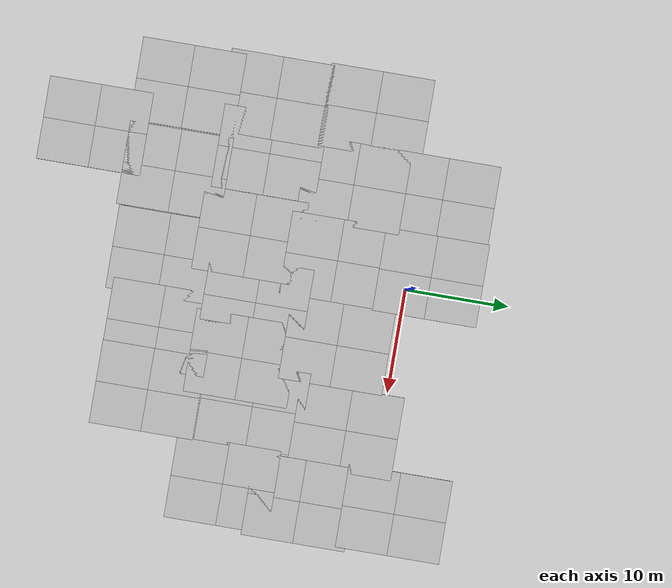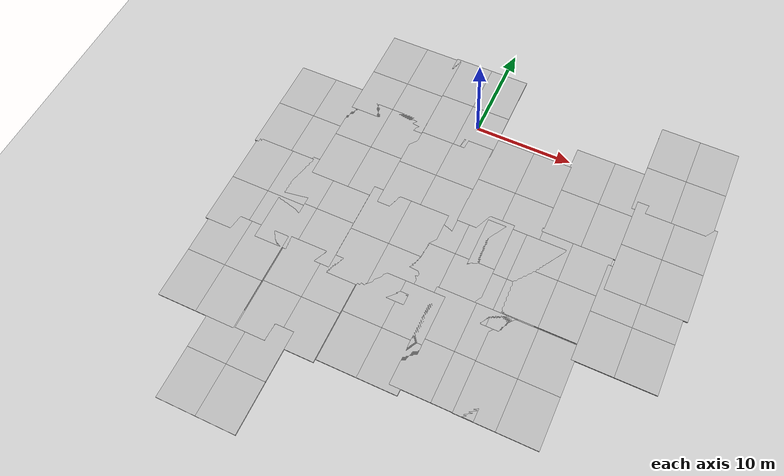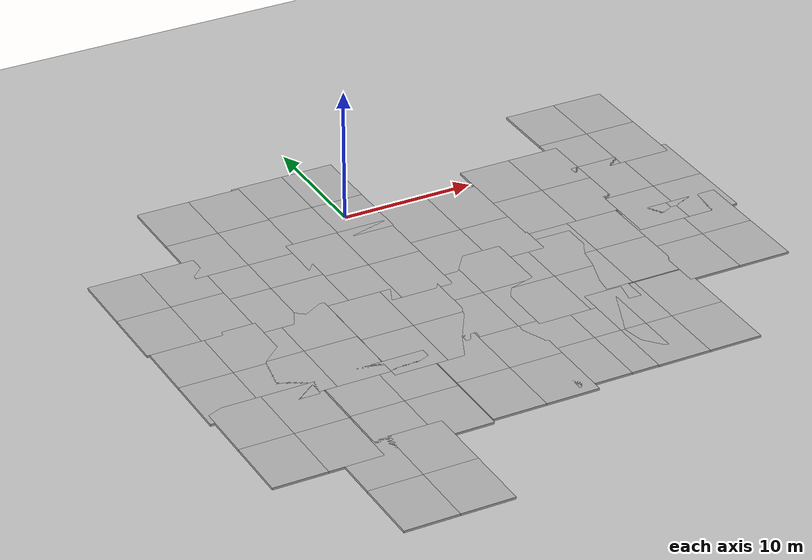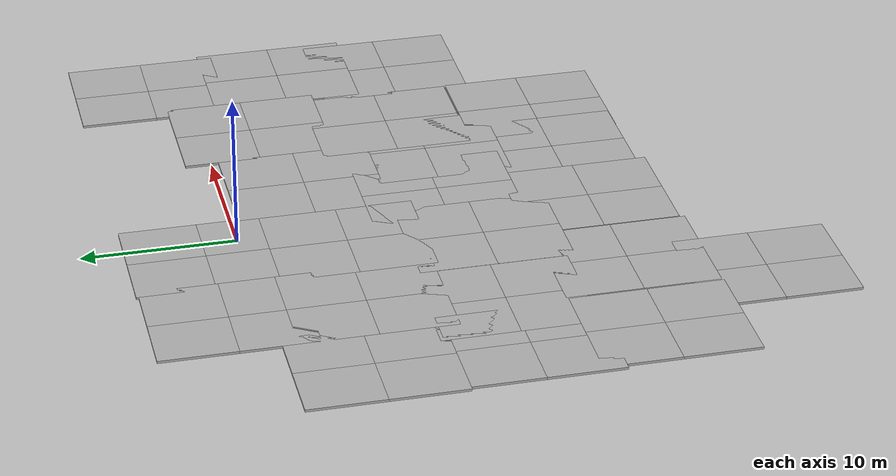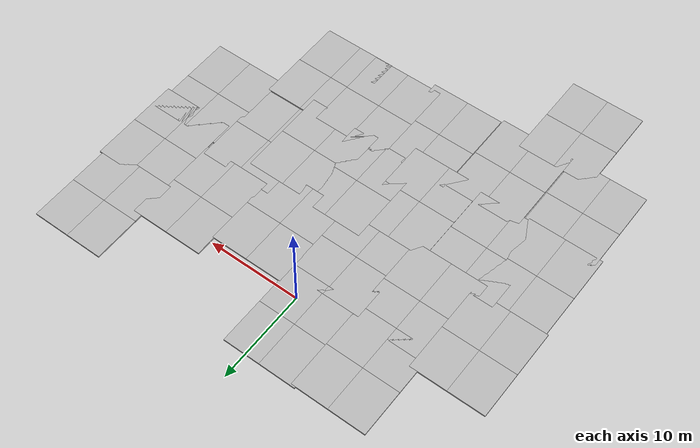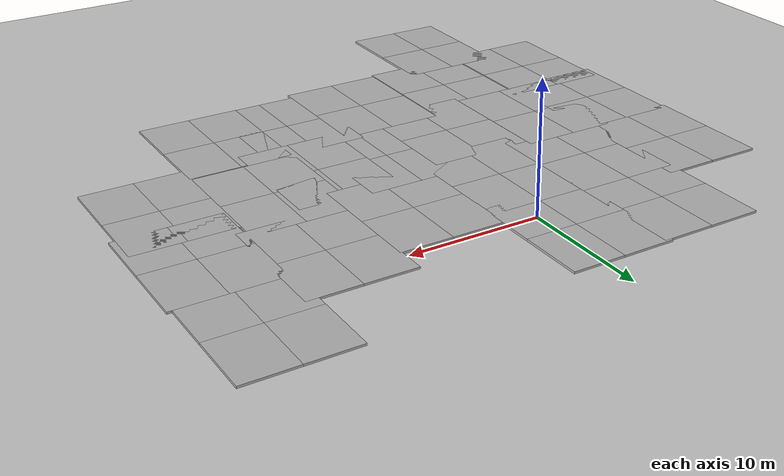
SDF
<sdf version="1.6">
 <world name="default">
  <model name="ground_plane">
   <static>1</static>
   <link name="link">
    <collision name="collision">
     <geometry><plane><normal>0 0 1</normal><size>100 100</size></plane></geometry>
     <surface><friction><ode><mu>100</mu><mu2>50</mu2></ode></friction></surface>
    </collision>
    <visual name="visual">
     <cast_shadows>0</cast_shadows>
     <geometry><plane><normal>0 0 1</normal><size>100 100</size></plane></geometry>
     <material>
      <script><uri>file://media/materials/scripts/gazebo.material</uri><name>Gazebo/Grey</name></script>
     </material>
    </visual>
   </link>
  </model>
  <model name="mud_box">
   <static>1</static>
   <link name="link">
    <collision name="collision"><geometry><box><size>8 10 0.2</size></box></geometry></collision>
    <visual name="visual_1">
     <pose>-2 2.5 0 0 -0 0</pose>
     <cast_shadows>0</cast_shadows>
     <geometry><box><size>4 5 0.2</size></box></geometry>
     <material>
      <script>
       <uri>model://mud_box/materials/scripts</uri>
       <uri>model://mud_box/materials/textures</uri>
       <name>vrc/mud</name>
      </script>
     </material>
    </visual>
    <visual name="visual_2">
     <pose>2 2.5 0 0 -0 0</pose>
     <cast_shadows>0</cast_shadows>
     <geometry><box><size>4 5 0.2</size></box></geometry>
     <material>
      <script>
       <uri>model://mud_box/materials/scripts</uri>
       <uri>model://mud_box/materials/textures</uri>
       <name>vrc/mud</name>
      </script>
     </material>
    </visual>
    <visual name="visual_3">
     <pose>2 -2.5 0 0 -0 0</pose>
     <cast_shadows>0</cast_shadows>
     <geometry><box><size>4 5 0.2</size></box></geometry>
     <material>
      <script>
       <uri>model://mud_box/materials/scripts</uri>
       <uri>model://mud_box/materials/textures</uri>
       <name>vrc/mud</name>
      </script>
     </material>
    </visual>
    <visual name="visual_4">
     <pose>-2 -2.5 0 0 -0 0</pose>
     <cast_shadows>0</cast_shadows>
     <geometry><box><size>4 5 0.2</size></box></geometry>
     <material>
      <script>
       <uri>model://mud_box/materials/scripts</uri>
       <uri>model://mud_box/materials/textures</uri>
       <name>vrc/mud</name>
      </script>
     </material>
    </visual>
   </link>
   <pose>-9.02524 2.09965 0 0 -0 0</pose>
  </model>
  <model name="mud_box_clone">
   <static>1</static>
   <link name="link">
    <collision name="collision"><geometry><box><size>8 10 0.2</size></box></geometry></collision>
    <visual name="visual_1">
     <pose>-2 2.5 0 0 -0 0</pose>
     <cast_shadows>0</cast_shadows>
     <geometry><box><size>4 5 0.2</size></box></geometry>
     <material>
      <script>
       <uri>model://mud_box/materials/scripts</uri>
       <uri>model://mud_box/materials/textures</uri>
       <name>vrc/mud</name>
      </script>
     </material>
    </visual>
    <visual name="visual_2">
     <pose>2 2.5 0 0 -0 0</pose>
     <cast_shadows>0</cast_shadows>
     <geometry><box><size>4 5 0.2</size></box></geometry>
     <material>
      <script>
       <uri>model://mud_box/materials/scripts</uri>
       <uri>model://mud_box/materials/textures</uri>
       <name>vrc/mud</name>
      </script>
     </material>
    </visual>
    <visual name="visual_3">
     <pose>2 -2.5 0 0 -0 0</pose>
     <cast_shadows>0</cast_shadows>
     <geometry><box><size>4 5 0.2</size></box></geometry>
     <material>
      <script>
       <uri>model://mud_box/materials/scripts</uri>
       <uri>model://mud_box/materials/textures</uri>
       <name>vrc/mud</name>
      </script>
     </material>
    </visual>
    <visual name="visual_4">
     <pose>-2 -2.5 0 0 -0 0</pose>
     <cast_shadows>0</cast_shadows>
     <geometry><box><size>4 5 0.2</size></box></geometry>
     <material>
      <script>
       <uri>model://mud_box/materials/scripts</uri>
       <uri>model://mud_box/materials/textures</uri>
       <name>vrc/mud</name>
      </script>
     </material>
    </visual>
   </link>
   <pose>-9.01138 -6.47442 0 0 -0 0</pose>
  </model>
  <model name="mud_box_clone_0">
   <static>1</static>
   <link name="link">
    <collision name="collision"><geometry><box><size>8 10 0.2</size></box></geometry></collision>
    <visual name="visual_1">
     <pose>-2 2.5 0 0 -0 0</pose>
     <cast_shadows>0</cast_shadows>
     <geometry><box><size>4 5 0.2</size></box></geometry>
     <material>
      <script>
       <uri>model://mud_box/materials/scripts</uri>
       <uri>model://mud_box/materials/textures</uri>
       <name>vrc/mud</name>
      </script>
     </material>
    </visual>
    <visual name="visual_2">
     <pose>2 2.5 0 0 -0 0</pose>
     <cast_shadows>0</cast_shadows>
     <geometry><box><size>4 5 0.2</size></box></geometry>
     <material>
      <script>
       <uri>model://mud_box/materials/scripts</uri>
       <uri>model://mud_box/materials/textures</uri>
       <name>vrc/mud</name>
      </script>
     </material>
    </visual>
    <visual name="visual_3">
     <pose>2 -2.5 0 0 -0 0</pose>
     <cast_shadows>0</cast_shadows>
     <geometry><box><size>4 5 0.2</size></box></geometry>
     <material>
      <script>
       <uri>model://mud_box/materials/scripts</uri>
       <uri>model://mud_box/materials/textures</uri>
       <name>vrc/mud</name>
      </script>
     </material>
    </visual>
    <visual name="visual_4">
     <pose>-2 -2.5 0 0 -0 0</pose>
     <cast_shadows>0</cast_shadows>
     <geometry><box><size>4 5 0.2</size></box></geometry>
     <material>
      <script>
       <uri>model://mud_box/materials/scripts</uri>
       <uri>model://mud_box/materials/textures</uri>
       <name>vrc/mud</name>
      </script>
     </material>
    </visual>
   </link>
   <pose>-1.53743 2.25843 0 0 -0 0</pose>
  </model>
  <model name="mud_box_clone_1">
   <static>1</static>
   <link name="link">
    <collision name="collision"><geometry><box><size>8 10 0.2</size></box></geometry></collision>
    <visual name="visual_1">
     <pose>-2 2.5 0 0 -0 0</pose>
     <cast_shadows>0</cast_shadows>
     <geometry><box><size>4 5 0.2</size></box></geometry>
     <material>
      <script>
       <uri>model://mud_box/materials/scripts</uri>
       <uri>model://mud_box/materials/textures</uri>
       <name>vrc/mud</name>
      </script>
     </material>
    </visual>
    <visual name="visual_2">
     <pose>2 2.5 0 0 -0 0</pose>
     <cast_shadows>0</cast_shadows>
     <geometry><box><size>4 5 0.2</size></box></geometry>
     <material>
      <script>
       <uri>model://mud_box/materials/scripts</uri>
       <uri>model://mud_box/materials/textures</uri>
       <name>vrc/mud</name>
      </script>
     </material>
    </visual>
    <visual name="visual_3">
     <pose>2 -2.5 0 0 -0 0</pose>
     <cast_shadows>0</cast_shadows>
     <geometry><box><size>4 5 0.2</size></box></geometry>
     <material>
      <script>
       <uri>model://mud_box/materials/scripts</uri>
       <uri>model://mud_box/materials/textures</uri>
       <name>vrc/mud</name>
      </script>
     </material>
    </visual>
    <visual name="visual_4">
     <pose>-2 -2.5 0 0 -0 0</pose>
     <cast_shadows>0</cast_shadows>
     <geometry><box><size>4 5 0.2</size></box></geometry>
     <material>
      <script>
       <uri>model://mud_box/materials/scripts</uri>
       <uri>model://mud_box/materials/textures</uri>
       <name>vrc/mud</name>
      </script>
     </material>
    </visual>
   </link>
   <pose>-1.61149 -6.78882 0 0 -0 0</pose>
  </model>
  <model name="mud_box_clone_3">
   <static>1</static>
   <link name="link">
    <collision name="collision"><geometry><box><size>8 10 0.2</size></box></geometry></collision>
    <visual name="visual_1">
     <pose>-2 2.5 0 0 -0 0</pose>
     <cast_shadows>0</cast_shadows>
     <geometry><box><size>4 5 0.2</size></box></geometry>
     <material>
      <script>
       <uri>model://mud_box/materials/scripts</uri>
       <uri>model://mud_box/materials/textures</uri>
       <name>vrc/mud</name>
      </script>
     </material>
    </visual>
    <visual name="visual_2">
     <pose>2 2.5 0 0 -0 0</pose>
     <cast_shadows>0</cast_shadows>
     <geometry><box><size>4 5 0.2</size></box></geometry>
     <material>
      <script>
       <uri>model://mud_box/materials/scripts</uri>
       <uri>model://mud_box/materials/textures</uri>
       <name>vrc/mud</name>
      </script>
     </material>
    </visual>
    <visual name="visual_3">
     <pose>2 -2.5 0 0 -0 0</pose>
     <cast_shadows>0</cast_shadows>
     <geometry><box><size>4 5 0.2</size></box></geometry>
     <material>
      <script>
       <uri>model://mud_box/materials/scripts</uri>
       <uri>model://mud_box/materials/textures</uri>
       <name>vrc/mud</name>
      </script>
     </material>
    </visual>
    <visual name="visual_4">
     <pose>-2 -2.5 0 0 -0 0</pose>
     <cast_shadows>0</cast_shadows>
     <geometry><box><size>4 5 0.2</size></box></geometry>
     <material>
      <script>
       <uri>model://mud_box/materials/scripts</uri>
       <uri>model://mud_box/materials/textures</uri>
       <name>vrc/mud</name>
      </script>
     </material>
    </visual>
   </link>
   <pose>6.33977 -5.49838 0 0 -0 0</pose>
  </model>
  <model name="mud_box_clone_5">
   <static>1</static>
   <link name="link">
    <collision name="collision"><geometry><box><size>8 10 0.2</size></box></geometry></collision>
    <visual name="visual_1">
     <pose>-2 2.5 0 0 -0 0</pose>
     <cast_shadows>0</cast_shadows>
     <geometry><box><size>4 5 0.2</size></box></geometry>
     <material>
      <script>
       <uri>model://mud_box/materials/scripts</uri>
       <uri>model://mud_box/materials/textures</uri>
       <name>vrc/mud</name>
      </script>
     </material>
    </visual>
    <visual name="visual_2">
     <pose>2 2.5 0 0 -0 0</pose>
     <cast_shadows>0</cast_shadows>
     <geometry><box><size>4 5 0.2</size></box></geometry>
     <material>
      <script>
       <uri>model://mud_box/materials/scripts</uri>
       <uri>model://mud_box/materials/textures</uri>
       <name>vrc/mud</name>
      </script>
     </material>
    </visual>
    <visual name="visual_3">
     <pose>2 -2.5 0 0 -0 0</pose>
     <cast_shadows>0</cast_shadows>
     <geometry><box><size>4 5 0.2</size></box></geometry>
     <material>
      <script>
       <uri>model://mud_box/materials/scripts</uri>
       <uri>model://mud_box/materials/textures</uri>
       <name>vrc/mud</name>
      </script>
     </material>
    </visual>
    <visual name="visual_4">
     <pose>-2 -2.5 0 0 -0 0</pose>
     <cast_shadows>0</cast_shadows>
     <geometry><box><size>4 5 0.2</size></box></geometry>
     <material>
      <script>
       <uri>model://mud_box/materials/scripts</uri>
       <uri>model://mud_box/materials/textures</uri>
       <name>vrc/mud</name>
      </script>
     </material>
    </visual>
   </link>
   <pose>14.1998 -3.30517 0 0 -0 0</pose>
  </model>
  <model name="mud_box_clone_6">
   <static>1</static>
   <link name="link">
    <collision name="collision"><geometry><box><size>8 10 0.2</size></box></geometry></collision>
    <visual name="visual_1">
     <pose>-2 2.5 0 0 -0 0</pose>
     <cast_shadows>0</cast_shadows>
     <geometry><box><size>4 5 0.2</size></box></geometry>
     <material>
      <script>
       <uri>model://mud_box/materials/scripts</uri>
       <uri>model://mud_box/materials/textures</uri>
       <name>vrc/mud</name>
      </script>
     </material>
    </visual>
    <visual name="visual_2">
     <pose>2 2.5 0 0 -0 0</pose>
     <cast_shadows>0</cast_shadows>
     <geometry><box><size>4 5 0.2</size></box></geometry>
     <material>
      <script>
       <uri>model://mud_box/materials/scripts</uri>
       <uri>model://mud_box/materials/textures</uri>
       <name>vrc/mud</name>
      </script>
     </material>
    </visual>
    <visual name="visual_3">
     <pose>2 -2.5 0 0 -0 0</pose>
     <cast_shadows>0</cast_shadows>
     <geometry><box><size>4 5 0.2</size></box></geometry>
     <material>
      <script>
       <uri>model://mud_box/materials/scripts</uri>
       <uri>model://mud_box/materials/textures</uri>
       <name>vrc/mud</name>
      </script>
     </material>
    </visual>
    <visual name="visual_4">
     <pose>-2 -2.5 0 0 -0 0</pose>
     <cast_shadows>0</cast_shadows>
     <geometry><box><size>4 5 0.2</size></box></geometry>
     <material>
      <script>
       <uri>model://mud_box/materials/scripts</uri>
       <uri>model://mud_box/materials/textures</uri>
       <name>vrc/mud</name>
      </script>
     </material>
    </visual>
   </link>
   <pose>13.4278 -12.4629 0 0 -0 0</pose>
  </model>
  <model name="mud_box_clone_7">
   <static>1</static>
   <link name="link">
    <collision name="collision"><geometry><box><size>8 10 0.2</size></box></geometry></collision>
    <visual name="visual_1">
     <pose>-2 2.5 0 0 -0 0</pose>
     <cast_shadows>0</cast_shadows>
     <geometry><box><size>4 5 0.2</size></box></geometry>
     <material>
      <script>
       <uri>model://mud_box/materials/scripts</uri>
       <uri>model://mud_box/materials/textures</uri>
       <name>vrc/mud</name>
      </script>
     </material>
    </visual>
    <visual name="visual_2">
     <pose>2 2.5 0 0 -0 0</pose>
     <cast_shadows>0</cast_shadows>
     <geometry><box><size>4 5 0.2</size></box></geometry>
     <material>
      <script>
       <uri>model://mud_box/materials/scripts</uri>
       <uri>model://mud_box/materials/textures</uri>
       <name>vrc/mud</name>
      </script>
     </material>
    </visual>
    <visual name="visual_3">
     <pose>2 -2.5 0 0 -0 0</pose>
     <cast_shadows>0</cast_shadows>
     <geometry><box><size>4 5 0.2</size></box></geometry>
     <material>
      <script>
       <uri>model://mud_box/materials/scripts</uri>
       <uri>model://mud_box/materials/textures</uri>
       <name>vrc/mud</name>
      </script>
     </material>
    </visual>
    <visual name="visual_4">
     <pose>-2 -2.5 0 0 -0 0</pose>
     <cast_shadows>0</cast_shadows>
     <geometry><box><size>4 5 0.2</size></box></geometry>
     <material>
      <script>
       <uri>model://mud_box/materials/scripts</uri>
       <uri>model://mud_box/materials/textures</uri>
       <name>vrc/mud</name>
      </script>
     </material>
    </visual>
   </link>
   <pose>3.63534 -13.8164 0 0 -0 0</pose>
  </model>
  <model name="mud_box_clone_8">
   <static>1</static>
   <link name="link">
    <collision name="collision"><geometry><box><size>8 10 0.2</size></box></geometry></collision>
    <visual name="visual_1">
     <pose>-2 2.5 0 0 -0 0</pose>
     <cast_shadows>0</cast_shadows>
     <geometry><box><size>4 5 0.2</size></box></geometry>
     <material>
      <script>
       <uri>model://mud_box/materials/scripts</uri>
       <uri>model://mud_box/materials/textures</uri>
       <name>vrc/mud</name>
      </script>
     </material>
    </visual>
    <visual name="visual_2">
     <pose>2 2.5 0 0 -0 0</pose>
     <cast_shadows>0</cast_shadows>
     <geometry><box><size>4 5 0.2</size></box></geometry>
     <material>
      <script>
       <uri>model://mud_box/materials/scripts</uri>
       <uri>model://mud_box/materials/textures</uri>
       <name>vrc/mud</name>
      </script>
     </material>
    </visual>
    <visual name="visual_3">
     <pose>2 -2.5 0 0 -0 0</pose>
     <cast_shadows>0</cast_shadows>
     <geometry><box><size>4 5 0.2</size></box></geometry>
     <material>
      <script>
       <uri>model://mud_box/materials/scripts</uri>
       <uri>model://mud_box/materials/textures</uri>
       <name>vrc/mud</name>
      </script>
     </material>
    </visual>
    <visual name="visual_4">
     <pose>-2 -2.5 0 0 -0 0</pose>
     <cast_shadows>0</cast_shadows>
     <geometry><box><size>4 5 0.2</size></box></geometry>
     <material>
      <script>
       <uri>model://mud_box/materials/scripts</uri>
       <uri>model://mud_box/materials/textures</uri>
       <name>vrc/mud</name>
      </script>
     </material>
    </visual>
   </link>
   <pose>9.06563 -14.2333 0 0 -0 0</pose>
  </model>
  <model name="mud_box_clone_9">
   <static>1</static>
   <link name="link">
    <collision name="collision"><geometry><box><size>8 10 0.2</size></box></geometry></collision>
    <visual name="visual_1">
     <pose>-2 2.5 0 0 -0 0</pose>
     <cast_shadows>0</cast_shadows>
     <geometry><box><size>4 5 0.2</size></box></geometry>
     <material>
      <script>
       <uri>model://mud_box/materials/scripts</uri>
       <uri>model://mud_box/materials/textures</uri>
       <name>vrc/mud</name>
      </script>
     </material>
    </visual>
    <visual name="visual_2">
     <pose>2 2.5 0 0 -0 0</pose>
     <cast_shadows>0</cast_shadows>
     <geometry><box><size>4 5 0.2</size></box></geometry>
     <material>
      <script>
       <uri>model://mud_box/materials/scripts</uri>
       <uri>model://mud_box/materials/textures</uri>
       <name>vrc/mud</name>
      </script>
     </material>
    </visual>
    <visual name="visual_3">
     <pose>2 -2.5 0 0 -0 0</pose>
     <cast_shadows>0</cast_shadows>
     <geometry><box><size>4 5 0.2</size></box></geometry>
     <material>
      <script>
       <uri>model://mud_box/materials/scripts</uri>
       <uri>model://mud_box/materials/textures</uri>
       <name>vrc/mud</name>
      </script>
     </material>
    </visual>
    <visual name="visual_4">
     <pose>-2 -2.5 0 0 -0 0</pose>
     <cast_shadows>0</cast_shadows>
     <geometry><box><size>4 5 0.2</size></box></geometry>
     <material>
      <script>
       <uri>model://mud_box/materials/scripts</uri>
       <uri>model://mud_box/materials/textures</uri>
       <name>vrc/mud</name>
      </script>
     </material>
    </visual>
   </link>
   <pose>-2.58874 -15.4114 0 0 -0 0</pose>
  </model>
  <model name="mud_box_clone_10">
   <static>1</static>
   <link name="link">
    <collision name="collision"><geometry><box><size>8 10 0.2</size></box></geometry></collision>
    <visual name="visual_1">
     <pose>-2 2.5 0 0 -0 0</pose>
     <cast_shadows>0</cast_shadows>
     <geometry><box><size>4 5 0.2</size></box></geometry>
     <material>
      <script>
       <uri>model://mud_box/materials/scripts</uri>
       <uri>model://mud_box/materials/textures</uri>
       <name>vrc/mud</name>
      </script>
     </material>
    </visual>
    <visual name="visual_2">
     <pose>2 2.5 0 0 -0 0</pose>
     <cast_shadows>0</cast_shadows>
     <geometry><box><size>4 5 0.2</size></box></geometry>
     <material>
      <script>
       <uri>model://mud_box/materials/scripts</uri>
       <uri>model://mud_box/materials/textures</uri>
       <name>vrc/mud</name>
      </script>
     </material>
    </visual>
    <visual name="visual_3">
     <pose>2 -2.5 0 0 -0 0</pose>
     <cast_shadows>0</cast_shadows>
     <geometry><box><size>4 5 0.2</size></box></geometry>
     <material>
      <script>
       <uri>model://mud_box/materials/scripts</uri>
       <uri>model://mud_box/materials/textures</uri>
       <name>vrc/mud</name>
      </script>
     </material>
    </visual>
    <visual name="visual_4">
     <pose>-2 -2.5 0 0 -0 0</pose>
     <cast_shadows>0</cast_shadows>
     <geometry><box><size>4 5 0.2</size></box></geometry>
     <material>
      <script>
       <uri>model://mud_box/materials/scripts</uri>
       <uri>model://mud_box/materials/textures</uri>
       <name>vrc/mud</name>
      </script>
     </material>
    </visual>
   </link>
   <pose>-10.6003 -14.8746 0 0 -0 0</pose>
  </model>
  <model name="mud_box_clone_11">
   <static>1</static>
   <link name="link">
    <collision name="collision"><geometry><box><size>8 10 0.2</size></box></geometry></collision>
    <visual name="visual_1">
     <pose>-2 2.5 0 0 -0 0</pose>
     <cast_shadows>0</cast_shadows>
     <geometry><box><size>4 5 0.2</size></box></geometry>
     <material>
      <script>
       <uri>model://mud_box/materials/scripts</uri>
       <uri>model://mud_box/materials/textures</uri>
       <name>vrc/mud</name>
      </script>
     </material>
    </visual>
    <visual name="visual_2">
     <pose>2 2.5 0 0 -0 0</pose>
     <cast_shadows>0</cast_shadows>
     <geometry><box><size>4 5 0.2</size></box></geometry>
     <material>
      <script>
       <uri>model://mud_box/materials/scripts</uri>
       <uri>model://mud_box/materials/textures</uri>
       <name>vrc/mud</name>
      </script>
     </material>
    </visual>
    <visual name="visual_3">
     <pose>2 -2.5 0 0 -0 0</pose>
     <cast_shadows>0</cast_shadows>
     <geometry><box><size>4 5 0.2</size></box></geometry>
     <material>
      <script>
       <uri>model://mud_box/materials/scripts</uri>
       <uri>model://mud_box/materials/textures</uri>
       <name>vrc/mud</name>
      </script>
     </material>
    </visual>
    <visual name="visual_4">
     <pose>-2 -2.5 0 0 -0 0</pose>
     <cast_shadows>0</cast_shadows>
     <geometry><box><size>4 5 0.2</size></box></geometry>
     <material>
      <script>
       <uri>model://mud_box/materials/scripts</uri>
       <uri>model://mud_box/materials/textures</uri>
       <name>vrc/mud</name>
      </script>
     </material>
    </visual>
   </link>
   <pose>-16.1399 -5.49382 0 0 -0 0</pose>
  </model>
  <model name="mud_box_clone_13">
   <static>1</static>
   <link name="link">
    <collision name="collision"><geometry><box><size>8 10 0.2</size></box></geometry></collision>
    <visual name="visual_1">
     <pose>-2 2.5 0 0 -0 0</pose>
     <cast_shadows>0</cast_shadows>
     <geometry><box><size>4 5 0.2</size></box></geometry>
     <material>
      <script>
       <uri>model://mud_box/materials/scripts</uri>
       <uri>model://mud_box/materials/textures</uri>
       <name>vrc/mud</name>
      </script>
     </material>
    </visual>
    <visual name="visual_2">
     <pose>2 2.5 0 0 -0 0</pose>
     <cast_shadows>0</cast_shadows>
     <geometry><box><size>4 5 0.2</size></box></geometry>
     <material>
      <script>
       <uri>model://mud_box/materials/scripts</uri>
       <uri>model://mud_box/materials/textures</uri>
       <name>vrc/mud</name>
      </script>
     </material>
    </visual>
    <visual name="visual_3">
     <pose>2 -2.5 0 0 -0 0</pose>
     <cast_shadows>0</cast_shadows>
     <geometry><box><size>4 5 0.2</size></box></geometry>
     <material>
      <script>
       <uri>model://mud_box/materials/scripts</uri>
       <uri>model://mud_box/materials/textures</uri>
       <name>vrc/mud</name>
      </script>
     </material>
    </visual>
    <visual name="visual_4">
     <pose>-2 -2.5 0 0 -0 0</pose>
     <cast_shadows>0</cast_shadows>
     <geometry><box><size>4 5 0.2</size></box></geometry>
     <material>
      <script>
       <uri>model://mud_box/materials/scripts</uri>
       <uri>model://mud_box/materials/textures</uri>
       <name>vrc/mud</name>
      </script>
     </material>
    </visual>
   </link>
   <pose>-15.9438 -15.0899 0 0 -0 0</pose>
  </model>
  <model name="mud_box_clone_8_clone">
   <static>1</static>
   <link name="link">
    <collision name="collision"><geometry><box><size>8 10 0.2</size></box></geometry></collision>
    <visual name="visual_1">
     <pose>-2 2.5 0 0 -0 0</pose>
     <cast_shadows>0</cast_shadows>
     <geometry><box><size>4 5 0.2</size></box></geometry>
     <material>
      <script>
       <uri>model://mud_box/materials/scripts</uri>
       <uri>model://mud_box/materials/textures</uri>
       <name>vrc/mud</name>
      </script>
     </material>
    </visual>
    <visual name="visual_2">
     <pose>2 2.5 0 0 -0 0</pose>
     <cast_shadows>0</cast_shadows>
     <geometry><box><size>4 5 0.2</size></box></geometry>
     <material>
      <script>
       <uri>model://mud_box/materials/scripts</uri>
       <uri>model://mud_box/materials/textures</uri>
       <name>vrc/mud</name>
      </script>
     </material>
    </visual>
    <visual name="visual_3">
     <pose>2 -2.5 0 0 -0 0</pose>
     <cast_shadows>0</cast_shadows>
     <geometry><box><size>4 5 0.2</size></box></geometry>
     <material>
      <script>
       <uri>model://mud_box/materials/scripts</uri>
       <uri>model://mud_box/materials/textures</uri>
       <name>vrc/mud</name>
      </script>
     </material>
    </visual>
    <visual name="visual_4">
     <pose>-2 -2.5 0 0 -0 0</pose>
     <cast_shadows>0</cast_shadows>
     <geometry><box><size>4 5 0.2</size></box></geometry>
     <material>
      <script>
       <uri>model://mud_box/materials/scripts</uri>
       <uri>model://mud_box/materials/textures</uri>
       <name>vrc/mud</name>
      </script>
     </material>
    </visual>
   </link>
   <pose>-10.445 -31.733 0 0 -0 0</pose>
  </model>
  <model name="mud_box_clone_8_clone_clone">
   <static>1</static>
   <link name="link">
    <collision name="collision"><geometry><box><size>8 10 0.2</size></box></geometry></collision>
    <visual name="visual_1">
     <pose>-2 2.5 0 0 -0 0</pose>
     <cast_shadows>0</cast_shadows>
     <geometry><box><size>4 5 0.2</size></box></geometry>
     <material>
      <script>
       <uri>model://mud_box/materials/scripts</uri>
       <uri>model://mud_box/materials/textures</uri>
       <name>vrc/mud</name>
      </script>
     </material>
    </visual>
    <visual name="visual_2">
     <pose>2 2.5 0 0 -0 0</pose>
     <cast_shadows>0</cast_shadows>
     <geometry><box><size>4 5 0.2</size></box></geometry>
     <material>
      <script>
       <uri>model://mud_box/materials/scripts</uri>
       <uri>model://mud_box/materials/textures</uri>
       <name>vrc/mud</name>
      </script>
     </material>
    </visual>
    <visual name="visual_3">
     <pose>2 -2.5 0 0 -0 0</pose>
     <cast_shadows>0</cast_shadows>
     <geometry><box><size>4 5 0.2</size></box></geometry>
     <material>
      <script>
       <uri>model://mud_box/materials/scripts</uri>
       <uri>model://mud_box/materials/textures</uri>
       <name>vrc/mud</name>
      </script>
     </material>
    </visual>
    <visual name="visual_4">
     <pose>-2 -2.5 0 0 -0 0</pose>
     <cast_shadows>0</cast_shadows>
     <geometry><box><size>4 5 0.2</size></box></geometry>
     <material>
      <script>
       <uri>model://mud_box/materials/scripts</uri>
       <uri>model://mud_box/materials/textures</uri>
       <name>vrc/mud</name>
      </script>
     </material>
    </visual>
   </link>
   <pose>-15.6067 -23.6119 0 0 -0 0</pose>
  </model>
  <model name="mud_box_clone_8_clone_clone_0">
   <static>1</static>
   <link name="link">
    <collision name="collision"><geometry><box><size>8 10 0.2</size></box></geometry></collision>
    <visual name="visual_1">
     <pose>-2 2.5 0 0 -0 0</pose>
     <cast_shadows>0</cast_shadows>
     <geometry><box><size>4 5 0.2</size></box></geometry>
     <material>
      <script>
       <uri>model://mud_box/materials/scripts</uri>
       <uri>model://mud_box/materials/textures</uri>
       <name>vrc/mud</name>
      </script>
     </material>
    </visual>
    <visual name="visual_2">
     <pose>2 2.5 0 0 -0 0</pose>
     <cast_shadows>0</cast_shadows>
     <geometry><box><size>4 5 0.2</size></box></geometry>
     <material>
      <script>
       <uri>model://mud_box/materials/scripts</uri>
       <uri>model://mud_box/materials/textures</uri>
       <name>vrc/mud</name>
      </script>
     </material>
    </visual>
    <visual name="visual_3">
     <pose>2 -2.5 0 0 -0 0</pose>
     <cast_shadows>0</cast_shadows>
     <geometry><box><size>4 5 0.2</size></box></geometry>
     <material>
      <script>
       <uri>model://mud_box/materials/scripts</uri>
       <uri>model://mud_box/materials/textures</uri>
       <name>vrc/mud</name>
      </script>
     </material>
    </visual>
    <visual name="visual_4">
     <pose>-2 -2.5 0 0 -0 0</pose>
     <cast_shadows>0</cast_shadows>
     <geometry><box><size>4 5 0.2</size></box></geometry>
     <material>
      <script>
       <uri>model://mud_box/materials/scripts</uri>
       <uri>model://mud_box/materials/textures</uri>
       <name>vrc/mud</name>
      </script>
     </material>
    </visual>
   </link>
   <pose>-7.49147 -23.5006 0 0 -0 0</pose>
  </model>
  <model name="mud_box_clone_8_clone_clone_1">
   <static>1</static>
   <link name="link">
    <collision name="collision"><geometry><box><size>8 10 0.2</size></box></geometry></collision>
    <visual name="visual_1">
     <pose>-2 2.5 0 0 -0 0</pose>
     <cast_shadows>0</cast_shadows>
     <geometry><box><size>4 5 0.2</size></box></geometry>
     <material>
      <script>
       <uri>model://mud_box/materials/scripts</uri>
       <uri>model://mud_box/materials/textures</uri>
       <name>vrc/mud</name>
      </script>
     </material>
    </visual>
    <visual name="visual_2">
     <pose>2 2.5 0 0 -0 0</pose>
     <cast_shadows>0</cast_shadows>
     <geometry><box><size>4 5 0.2</size></box></geometry>
     <material>
      <script>
       <uri>model://mud_box/materials/scripts</uri>
       <uri>model://mud_box/materials/textures</uri>
       <name>vrc/mud</name>
      </script>
     </material>
    </visual>
    <visual name="visual_3">
     <pose>2 -2.5 0 0 -0 0</pose>
     <cast_shadows>0</cast_shadows>
     <geometry><box><size>4 5 0.2</size></box></geometry>
     <material>
      <script>
       <uri>model://mud_box/materials/scripts</uri>
       <uri>model://mud_box/materials/textures</uri>
       <name>vrc/mud</name>
      </script>
     </material>
    </visual>
    <visual name="visual_4">
     <pose>-2 -2.5 0 0 -0 0</pose>
     <cast_shadows>0</cast_shadows>
     <geometry><box><size>4 5 0.2</size></box></geometry>
     <material>
      <script>
       <uri>model://mud_box/materials/scripts</uri>
       <uri>model://mud_box/materials/textures</uri>
       <name>vrc/mud</name>
      </script>
     </material>
    </visual>
   </link>
   <pose>0.581991 -23.1742 0 0 -0 0</pose>
  </model>
  <model name="mud_box_clone_8_clone_clone_2">
   <static>1</static>
   <link name="link">
    <collision name="collision"><geometry><box><size>8 10 0.2</size></box></geometry></collision>
    <visual name="visual_1">
     <pose>-2 2.5 0 0 -0 0</pose>
     <cast_shadows>0</cast_shadows>
     <geometry><box><size>4 5 0.2</size></box></geometry>
     <material>
      <script>
       <uri>model://mud_box/materials/scripts</uri>
       <uri>model://mud_box/materials/textures</uri>
       <name>vrc/mud</name>
      </script>
     </material>
    </visual>
    <visual name="visual_2">
     <pose>2 2.5 0 0 -0 0</pose>
     <cast_shadows>0</cast_shadows>
     <geometry><box><size>4 5 0.2</size></box></geometry>
     <material>
      <script>
       <uri>model://mud_box/materials/scripts</uri>
       <uri>model://mud_box/materials/textures</uri>
       <name>vrc/mud</name>
      </script>
     </material>
    </visual>
    <visual name="visual_3">
     <pose>2 -2.5 0 0 -0 0</pose>
     <cast_shadows>0</cast_shadows>
     <geometry><box><size>4 5 0.2</size></box></geometry>
     <material>
      <script>
       <uri>model://mud_box/materials/scripts</uri>
       <uri>model://mud_box/materials/textures</uri>
       <name>vrc/mud</name>
      </script>
     </material>
    </visual>
    <visual name="visual_4">
     <pose>-2 -2.5 0 0 -0 0</pose>
     <cast_shadows>0</cast_shadows>
     <geometry><box><size>4 5 0.2</size></box></geometry>
     <material>
      <script>
       <uri>model://mud_box/materials/scripts</uri>
       <uri>model://mud_box/materials/textures</uri>
       <name>vrc/mud</name>
      </script>
     </material>
    </visual>
   </link>
   <pose>7.46501 -22.534 0 0 -0 0</pose>
  </model>
  <model name="mud_box_clone_8_clone_clone_3">
   <static>1</static>
   <link name="link">
    <collision name="collision"><geometry><box><size>8 10 0.2</size></box></geometry></collision>
    <visual name="visual_1">
     <pose>-2 2.5 0 0 -0 0</pose>
     <cast_shadows>0</cast_shadows>
     <geometry><box><size>4 5 0.2</size></box></geometry>
     <material>
      <script>
       <uri>model://mud_box/materials/scripts</uri>
       <uri>model://mud_box/materials/textures</uri>
       <name>vrc/mud</name>
      </script>
     </material>
    </visual>
    <visual name="visual_2">
     <pose>2 2.5 0 0 -0 0</pose>
     <cast_shadows>0</cast_shadows>
     <geometry><box><size>4 5 0.2</size></box></geometry>
     <material>
      <script>
       <uri>model://mud_box/materials/scripts</uri>
       <uri>model://mud_box/materials/textures</uri>
       <name>vrc/mud</name>
      </script>
     </material>
    </visual>
    <visual name="visual_3">
     <pose>2 -2.5 0 0 -0 0</pose>
     <cast_shadows>0</cast_shadows>
     <geometry><box><size>4 5 0.2</size></box></geometry>
     <material>
      <script>
       <uri>model://mud_box/materials/scripts</uri>
       <uri>model://mud_box/materials/textures</uri>
       <name>vrc/mud</name>
      </script>
     </material>
    </visual>
    <visual name="visual_4">
     <pose>-2 -2.5 0 0 -0 0</pose>
     <cast_shadows>0</cast_shadows>
     <geometry><box><size>4 5 0.2</size></box></geometry>
     <material>
      <script>
       <uri>model://mud_box/materials/scripts</uri>
       <uri>model://mud_box/materials/textures</uri>
       <name>vrc/mud</name>
      </script>
     </material>
    </visual>
   </link>
   <pose>13.5154 -22.5631 0 0 -0 0</pose>
  </model>
  <model name="mud_box_clone_8_clone_clone_12">
   <static>1</static>
   <link name="link">
    <collision name="collision"><geometry><box><size>8 10 0.2</size></box></geometry></collision>
    <visual name="visual_1">
     <pose>-2 2.5 0 0 -0 0</pose>
     <cast_shadows>0</cast_shadows>
     <geometry><box><size>4 5 0.2</size></box></geometry>
     <material>
      <script>
       <uri>model://mud_box/materials/scripts</uri>
       <uri>model://mud_box/materials/textures</uri>
       <name>vrc/mud</name>
      </script>
     </material>
    </visual>
    <visual name="visual_2">
     <pose>2 2.5 0 0 -0 0</pose>
     <cast_shadows>0</cast_shadows>
     <geometry><box><size>4 5 0.2</size></box></geometry>
     <material>
      <script>
       <uri>model://mud_box/materials/scripts</uri>
       <uri>model://mud_box/materials/textures</uri>
       <name>vrc/mud</name>
      </script>
     </material>
    </visual>
    <visual name="visual_3">
     <pose>2 -2.5 0 0 -0 0</pose>
     <cast_shadows>0</cast_shadows>
     <geometry><box><size>4 5 0.2</size></box></geometry>
     <material>
      <script>
       <uri>model://mud_box/materials/scripts</uri>
       <uri>model://mud_box/materials/textures</uri>
       <name>vrc/mud</name>
      </script>
     </material>
    </visual>
    <visual name="visual_4">
     <pose>-2 -2.5 0 0 -0 0</pose>
     <cast_shadows>0</cast_shadows>
     <geometry><box><size>4 5 0.2</size></box></geometry>
     <material>
      <script>
       <uri>model://mud_box/materials/scripts</uri>
       <uri>model://mud_box/materials/textures</uri>
       <name>vrc/mud</name>
      </script>
     </material>
    </visual>
   </link>
   <pose>21.1697 -14.034 0 0 -0 0</pose>
  </model>
  <model name="mud_box_clone_8_clone_clone_13">
   <static>1</static>
   <link name="link">
    <collision name="collision"><geometry><box><size>8 10 0.2</size></box></geometry></collision>
    <visual name="visual_1">
     <pose>-2 2.5 0 0 -0 0</pose>
     <cast_shadows>0</cast_shadows>
     <geometry><box><size>4 5 0.2</size></box></geometry>
     <material>
      <script>
       <uri>model://mud_box/materials/scripts</uri>
       <uri>model://mud_box/materials/textures</uri>
       <name>vrc/mud</name>
      </script>
     </material>
    </visual>
    <visual name="visual_2">
     <pose>2 2.5 0 0 -0 0</pose>
     <cast_shadows>0</cast_shadows>
     <geometry><box><size>4 5 0.2</size></box></geometry>
     <material>
      <script>
       <uri>model://mud_box/materials/scripts</uri>
       <uri>model://mud_box/materials/textures</uri>
       <name>vrc/mud</name>
      </script>
     </material>
    </visual>
    <visual name="visual_3">
     <pose>2 -2.5 0 0 -0 0</pose>
     <cast_shadows>0</cast_shadows>
     <geometry><box><size>4 5 0.2</size></box></geometry>
     <material>
      <script>
       <uri>model://mud_box/materials/scripts</uri>
       <uri>model://mud_box/materials/textures</uri>
       <name>vrc/mud</name>
      </script>
     </material>
    </visual>
    <visual name="visual_4">
     <pose>-2 -2.5 0 0 -0 0</pose>
     <cast_shadows>0</cast_shadows>
     <geometry><box><size>4 5 0.2</size></box></geometry>
     <material>
      <script>
       <uri>model://mud_box/materials/scripts</uri>
       <uri>model://mud_box/materials/textures</uri>
       <name>vrc/mud</name>
      </script>
     </material>
    </visual>
   </link>
   <pose>21.6087 -6.52247 0 0 -0 0</pose>
  </model>
  <model name="mud_box_clone_8_clone_clone_14">
   <static>1</static>
   <link name="link">
    <collision name="collision"><geometry><box><size>8 10 0.2</size></box></geometry></collision>
    <visual name="visual_1">
     <pose>-2 2.5 0 0 -0 0</pose>
     <cast_shadows>0</cast_shadows>
     <geometry><box><size>4 5 0.2</size></box></geometry>
     <material>
      <script>
       <uri>model://mud_box/materials/scripts</uri>
       <uri>model://mud_box/materials/textures</uri>
       <name>vrc/mud</name>
      </script>
     </material>
    </visual>
    <visual name="visual_2">
     <pose>2 2.5 0 0 -0 0</pose>
     <cast_shadows>0</cast_shadows>
     <geometry><box><size>4 5 0.2</size></box></geometry>
     <material>
      <script>
       <uri>model://mud_box/materials/scripts</uri>
       <uri>model://mud_box/materials/textures</uri>
       <name>vrc/mud</name>
      </script>
     </material>
    </visual>
    <visual name="visual_3">
     <pose>2 -2.5 0 0 -0 0</pose>
     <cast_shadows>0</cast_shadows>
     <geometry><box><size>4 5 0.2</size></box></geometry>
     <material>
      <script>
       <uri>model://mud_box/materials/scripts</uri>
       <uri>model://mud_box/materials/textures</uri>
       <name>vrc/mud</name>
      </script>
     </material>
    </visual>
    <visual name="visual_4">
     <pose>-2 -2.5 0 0 -0 0</pose>
     <cast_shadows>0</cast_shadows>
     <geometry><box><size>4 5 0.2</size></box></geometry>
     <material>
      <script>
       <uri>model://mud_box/materials/scripts</uri>
       <uri>model://mud_box/materials/textures</uri>
       <name>vrc/mud</name>
      </script>
     </material>
    </visual>
   </link>
   <pose>21.2715 2.53707 0 0 -0 0</pose>
  </model>
 </world>
</sdf>
